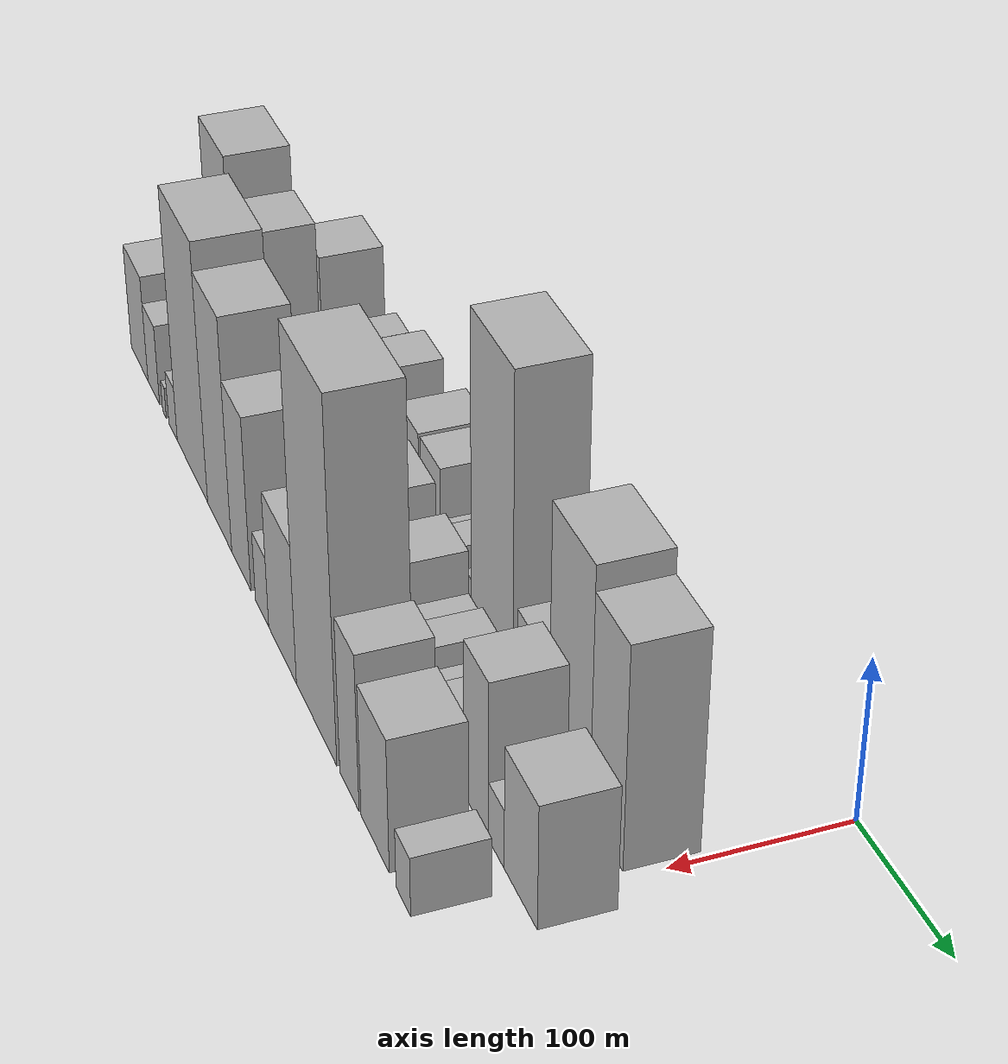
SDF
<sdf version="1.6">
 <world name="default">
  <model name="building_1">
   <static>1</static>
   <pose>100.0000 -534.6600 0 0.000000 0.000000 0.000000</pose>
   <link name="link">
    <pose>0 0 16.50 0 0 0</pose>
    <collision name="collision"><geometry><box><size>40.0000 18.6801 33.0000</size></box></geometry></collision>
    <visual name="visual">
     <cast_shadows>0</cast_shadows>
     <geometry><box><size>40.0000 18.6801 33.0000</size></box></geometry>
     <material>
      <script>
       <uri>model://HANNAS_wall/materials/scripts</uri>
       <uri>model://HANNAS_wall/materials/textures</uri>
       <name>vrc/HANNAS_wall</name>
      </script>
     </material>
    </visual>
   </link>
  </model>
  <model name="building_2">
   <static>1</static>
   <pose>100.0000 -504.8349 0 0.000000 0.000000 0.000000</pose>
   <link name="link">
    <pose>0 0 37.50 0 0 0</pose>
    <collision name="collision"><geometry><box><size>40.0000 40.9701 75.0000</size></box></geometry></collision>
    <visual name="visual">
     <cast_shadows>0</cast_shadows>
     <geometry><box><size>40.0000 40.9701 75.0000</size></box></geometry>
     <material>
      <script>
       <uri>model://HANNAS_wall/materials/scripts</uri>
       <uri>model://HANNAS_wall/materials/textures</uri>
       <name>vrc/HANNAS_wall</name>
      </script>
     </material>
    </visual>
   </link>
  </model>
  <model name="building_3">
   <static>1</static>
   <pose>100.0000 -468.0988 0 0.000000 0.000000 0.000000</pose>
   <link name="link">
    <pose>0 0 13.50 0 0 0</pose>
    <collision name="collision"><geometry><box><size>40.0000 12.5020 27.0000</size></box></geometry></collision>
    <visual name="visual">
     <cast_shadows>0</cast_shadows>
     <geometry><box><size>40.0000 12.5020 27.0000</size></box></geometry>
     <material>
      <script>
       <uri>model://HANNAS_wall/materials/scripts</uri>
       <uri>model://HANNAS_wall/materials/textures</uri>
       <name>vrc/HANNAS_wall</name>
      </script>
     </material>
    </visual>
   </link>
  </model>
  <model name="building_4">
   <static>1</static>
   <pose>100.0000 -449.6808 0 0.000000 0.000000 0.000000</pose>
   <link name="link">
    <pose>0 0 21.00 0 0 0</pose>
    <collision name="collision"><geometry><box><size>40.0000 24.3339 42.0000</size></box></geometry></collision>
    <visual name="visual">
     <cast_shadows>0</cast_shadows>
     <geometry><box><size>40.0000 24.3339 42.0000</size></box></geometry>
     <material>
      <script>
       <uri>model://HANNAS_wall/materials/scripts</uri>
       <uri>model://HANNAS_wall/materials/textures</uri>
       <name>vrc/HANNAS_wall</name>
      </script>
     </material>
    </visual>
   </link>
  </model>
  <model name="building_5">
   <static>1</static>
   <pose>100.0000 -418.4018 0 0.000000 0.000000 0.000000</pose>
   <link name="link">
    <pose>0 0 18.00 0 0 0</pose>
    <collision name="collision"><geometry><box><size>40.0000 18.2242 36.0000</size></box></geometry></collision>
    <visual name="visual">
     <cast_shadows>0</cast_shadows>
     <geometry><box><size>40.0000 18.2242 36.0000</size></box></geometry>
     <material>
      <script>
       <uri>model://HANNAS_wall/materials/scripts</uri>
       <uri>model://HANNAS_wall/materials/textures</uri>
       <name>vrc/HANNAS_wall</name>
      </script>
     </material>
    </visual>
   </link>
  </model>
  <model name="building_6">
   <static>1</static>
   <pose>100.0000 -392.4293 0 0.000000 0.000000 0.000000</pose>
   <link name="link">
    <pose>0 0 30.00 0 0 0</pose>
    <collision name="collision"><geometry><box><size>40.0000 33.7208 60.0000</size></box></geometry></collision>
    <visual name="visual">
     <cast_shadows>0</cast_shadows>
     <geometry><box><size>40.0000 33.7208 60.0000</size></box></geometry>
     <material>
      <script>
       <uri>model://HANNAS_wall/materials/scripts</uri>
       <uri>model://HANNAS_wall/materials/textures</uri>
       <name>vrc/HANNAS_wall</name>
      </script>
     </material>
    </visual>
   </link>
  </model>
  <model name="building_7">
   <static>1</static>
   <pose>100.0000 -365.3134 0 0.000000 0.000000 0.000000</pose>
   <link name="link">
    <pose>0 0 18.00 0 0 0</pose>
    <collision name="collision"><geometry><box><size>40.0000 20.5110 36.0000</size></box></geometry></collision>
    <visual name="visual">
     <cast_shadows>0</cast_shadows>
     <geometry><box><size>40.0000 20.5110 36.0000</size></box></geometry>
     <material>
      <script>
       <uri>model://HANNAS_wall/materials/scripts</uri>
       <uri>model://HANNAS_wall/materials/textures</uri>
       <name>vrc/HANNAS_wall</name>
      </script>
     </material>
    </visual>
   </link>
  </model>
  <model name="building_8">
   <static>1</static>
   <pose>100.0000 -346.2104 0 0.000000 0.000000 0.000000</pose>
   <link name="link">
    <pose>0 0 16.50 0 0 0</pose>
    <collision name="collision"><geometry><box><size>40.0000 17.6951 33.0000</size></box></geometry></collision>
    <visual name="visual">
     <cast_shadows>0</cast_shadows>
     <geometry><box><size>40.0000 17.6951 33.0000</size></box></geometry>
     <material>
      <script>
       <uri>model://HANNAS_wall/materials/scripts</uri>
       <uri>model://HANNAS_wall/materials/textures</uri>
       <name>vrc/HANNAS_wall</name>
      </script>
     </material>
    </visual>
   </link>
  </model>
  <model name="building_9">
   <static>1</static>
   <pose>100.0000 -320.1440 0 0.000000 0.000000 0.000000</pose>
   <link name="link">
    <pose>0 0 31.50 0 0 0</pose>
    <collision name="collision"><geometry><box><size>40.0000 34.4376 63.0000</size></box></geometry></collision>
    <visual name="visual">
     <cast_shadows>0</cast_shadows>
     <geometry><box><size>40.0000 34.4376 63.0000</size></box></geometry>
     <material>
      <script>
       <uri>model://HANNAS_wall/materials/scripts</uri>
       <uri>model://HANNAS_wall/materials/textures</uri>
       <name>vrc/HANNAS_wall</name>
      </script>
     </material>
    </visual>
   </link>
  </model>
  <model name="building_10">
   <static>1</static>
   <pose>100.0000 -283.2703 0 0.000000 0.000000 0.000000</pose>
   <link name="link">
    <pose>0 0 31.50 0 0 0</pose>
    <collision name="collision"><geometry><box><size>40.0000 33.3098 63.0000</size></box></geometry></collision>
    <visual name="visual">
     <cast_shadows>0</cast_shadows>
     <geometry><box><size>40.0000 33.3098 63.0000</size></box></geometry>
     <material>
      <script>
       <uri>model://HANNAS_wall/materials/scripts</uri>
       <uri>model://HANNAS_wall/materials/textures</uri>
       <name>vrc/HANNAS_wall</name>
      </script>
     </material>
    </visual>
   </link>
  </model>
  <model name="building_11">
   <static>1</static>
   <pose>100.0000 -258.0686 0 0.000000 0.000000 0.000000</pose>
   <link name="link">
    <pose>0 0 15.00 0 0 0</pose>
    <collision name="collision"><geometry><box><size>40.0000 17.0937 30.0000</size></box></geometry></collision>
    <visual name="visual">
     <cast_shadows>0</cast_shadows>
     <geometry><box><size>40.0000 17.0937 30.0000</size></box></geometry>
     <material>
      <script>
       <uri>model://HANNAS_wall/materials/scripts</uri>
       <uri>model://HANNAS_wall/materials/textures</uri>
       <name>vrc/HANNAS_wall</name>
      </script>
     </material>
    </visual>
   </link>
  </model>
  <model name="building_12">
   <static>1</static>
   <pose>100.0000 -238.4917 0 0.000000 0.000000 0.000000</pose>
   <link name="link">
    <pose>0 0 19.50 0 0 0</pose>
    <collision name="collision"><geometry><box><size>40.0000 22.0602 39.0000</size></box></geometry></collision>
    <visual name="visual">
     <cast_shadows>0</cast_shadows>
     <geometry><box><size>40.0000 22.0602 39.0000</size></box></geometry>
     <material>
      <script>
       <uri>model://HANNAS_wall/materials/scripts</uri>
       <uri>model://HANNAS_wall/materials/textures</uri>
       <name>vrc/HANNAS_wall</name>
      </script>
     </material>
    </visual>
   </link>
  </model>
  <model name="building_13">
   <static>1</static>
   <pose>100.0000 -222.4701 0 0.000000 0.000000 0.000000</pose>
   <link name="link">
    <pose>0 0 12.00 0 0 0</pose>
    <collision name="collision"><geometry><box><size>40.0000 9.9830 24.0000</size></box></geometry></collision>
    <visual name="visual">
     <cast_shadows>0</cast_shadows>
     <geometry><box><size>40.0000 9.9830 24.0000</size></box></geometry>
     <material>
      <script>
       <uri>model://HANNAS_wall/materials/scripts</uri>
       <uri>model://HANNAS_wall/materials/textures</uri>
       <name>vrc/HANNAS_wall</name>
      </script>
     </material>
    </visual>
   </link>
  </model>
  <model name="building_14">
   <static>1</static>
   <pose>100.0000 -185.9911 0 0.000000 0.000000 0.000000</pose>
   <link name="link">
    <pose>0 0 96.00 0 0 0</pose>
    <collision name="collision"><geometry><box><size>40.0000 62.9750 192.0000</size></box></geometry></collision>
    <visual name="visual">
     <cast_shadows>0</cast_shadows>
     <geometry><box><size>40.0000 62.9750 192.0000</size></box></geometry>
     <material>
      <script>
       <uri>model://HANNAS_wall/materials/scripts</uri>
       <uri>model://HANNAS_wall/materials/textures</uri>
       <name>vrc/HANNAS_wall</name>
      </script>
     </material>
    </visual>
   </link>
  </model>
  <model name="building_15">
   <static>1</static>
   <pose>100.0000 -134.8019 0 0.000000 0.000000 0.000000</pose>
   <link name="link">
    <pose>0 0 27.00 0 0 0</pose>
    <collision name="collision"><geometry><box><size>40.0000 27.4034 54.0000</size></box></geometry></collision>
    <visual name="visual">
     <cast_shadows>0</cast_shadows>
     <geometry><box><size>40.0000 27.4034 54.0000</size></box></geometry>
     <material>
      <script>
       <uri>model://HANNAS_wall/materials/scripts</uri>
       <uri>model://HANNAS_wall/materials/textures</uri>
       <name>vrc/HANNAS_wall</name>
      </script>
     </material>
    </visual>
   </link>
  </model>
  <model name="building_16">
   <static>1</static>
   <pose>100.0000 -112.0417 0 0.000000 0.000000 0.000000</pose>
   <link name="link">
    <pose>0 0 18.00 0 0 0</pose>
    <collision name="collision"><geometry><box><size>40.0000 18.1170 36.0000</size></box></geometry></collision>
    <visual name="visual">
     <cast_shadows>0</cast_shadows>
     <geometry><box><size>40.0000 18.1170 36.0000</size></box></geometry>
     <material>
      <script>
       <uri>model://HANNAS_wall/materials/scripts</uri>
       <uri>model://HANNAS_wall/materials/textures</uri>
       <name>vrc/HANNAS_wall</name>
      </script>
     </material>
    </visual>
   </link>
  </model>
  <model name="building_17">
   <static>1</static>
   <pose>100.0000 -75.4628 0 0.000000 0.000000 0.000000</pose>
   <link name="link">
    <pose>0 0 75.00 0 0 0</pose>
    <collision name="collision"><geometry><box><size>40.0000 55.0407 150.0000</size></box></geometry></collision>
    <visual name="visual">
     <cast_shadows>0</cast_shadows>
     <geometry><box><size>40.0000 55.0407 150.0000</size></box></geometry>
     <material>
      <script>
       <uri>model://HANNAS_wall/materials/scripts</uri>
       <uri>model://HANNAS_wall/materials/textures</uri>
       <name>vrc/HANNAS_wall</name>
      </script>
     </material>
    </visual>
   </link>
  </model>
  <model name="building_18">
   <static>1</static>
   <pose>100.0000 -26.7473 0 0.000000 0.000000 0.000000</pose>
   <link name="link">
    <pose>0 0 67.50 0 0 0</pose>
    <collision name="collision"><geometry><box><size>40.0000 42.3904 135.0000</size></box></geometry></collision>
    <visual name="visual">
     <cast_shadows>0</cast_shadows>
     <geometry><box><size>40.0000 42.3904 135.0000</size></box></geometry>
     <material>
      <script>
       <uri>model://HANNAS_wall/materials/scripts</uri>
       <uri>model://HANNAS_wall/materials/textures</uri>
       <name>vrc/HANNAS_wall</name>
      </script>
     </material>
    </visual>
   </link>
  </model>
  <model name="building_34">
   <static>1</static>
   <pose>152.0000 -520.9492 0 0.000000 0.000000 0.000000</pose>
   <link name="link">
    <pose>0 0 73.50 0 0 0</pose>
    <collision name="collision"><geometry><box><size>40.0000 54.1016 147.0000</size></box></geometry></collision>
    <visual name="visual">
     <cast_shadows>0</cast_shadows>
     <geometry><box><size>40.0000 54.1016 147.0000</size></box></geometry>
     <material>
      <script>
       <uri>model://HANNAS_wall/materials/scripts</uri>
       <uri>model://HANNAS_wall/materials/textures</uri>
       <name>vrc/HANNAS_wall</name>
      </script>
     </material>
    </visual>
   </link>
  </model>
  <model name="building_35">
   <static>1</static>
   <pose>152.0000 -468.5705 0 0.000000 0.000000 0.000000</pose>
   <link name="link">
    <pose>0 0 60.00 0 0 0</pose>
    <collision name="collision"><geometry><box><size>40.0000 42.6557 120.0000</size></box></geometry></collision>
    <visual name="visual">
     <cast_shadows>0</cast_shadows>
     <geometry><box><size>40.0000 42.6557 120.0000</size></box></geometry>
     <material>
      <script>
       <uri>model://HANNAS_wall/materials/scripts</uri>
       <uri>model://HANNAS_wall/materials/textures</uri>
       <name>vrc/HANNAS_wall</name>
      </script>
     </material>
    </visual>
   </link>
  </model>
  <model name="building_36">
   <static>1</static>
   <pose>152.0000 -425.7523 0 0.000000 0.000000 0.000000</pose>
   <link name="link">
    <pose>0 0 31.50 0 0 0</pose>
    <collision name="collision"><geometry><box><size>40.0000 34.9807 63.0000</size></box></geometry></collision>
    <visual name="visual">
     <cast_shadows>0</cast_shadows>
     <geometry><box><size>40.0000 34.9807 63.0000</size></box></geometry>
     <material>
      <script>
       <uri>model://HANNAS_wall/materials/scripts</uri>
       <uri>model://HANNAS_wall/materials/textures</uri>
       <name>vrc/HANNAS_wall</name>
      </script>
     </material>
    </visual>
   </link>
  </model>
  <model name="building_37">
   <static>1</static>
   <pose>152.0000 -399.0803 0 0.000000 0.000000 0.000000</pose>
   <link name="link">
    <pose>0 0 16.50 0 0 0</pose>
    <collision name="collision"><geometry><box><size>40.0000 18.3633 33.0000</size></box></geometry></collision>
    <visual name="visual">
     <cast_shadows>0</cast_shadows>
     <geometry><box><size>40.0000 18.3633 33.0000</size></box></geometry>
     <material>
      <script>
       <uri>model://HANNAS_wall/materials/scripts</uri>
       <uri>model://HANNAS_wall/materials/textures</uri>
       <name>vrc/HANNAS_wall</name>
      </script>
     </material>
    </visual>
   </link>
  </model>
  <model name="building_38">
   <static>1</static>
   <pose>152.0000 -382.2008 0 0.000000 0.000000 0.000000</pose>
   <link name="link">
    <pose>0 0 15.00 0 0 0</pose>
    <collision name="collision"><geometry><box><size>40.0000 15.3959 30.0000</size></box></geometry></collision>
    <visual name="visual">
     <cast_shadows>0</cast_shadows>
     <geometry><box><size>40.0000 15.3959 30.0000</size></box></geometry>
     <material>
      <script>
       <uri>model://HANNAS_wall/materials/scripts</uri>
       <uri>model://HANNAS_wall/materials/textures</uri>
       <name>vrc/HANNAS_wall</name>
      </script>
     </material>
    </visual>
   </link>
  </model>
  <model name="building_39">
   <static>1</static>
   <pose>152.0000 -365.5095 0 0.000000 0.000000 0.000000</pose>
   <link name="link">
    <pose>0 0 16.50 0 0 0</pose>
    <collision name="collision"><geometry><box><size>40.0000 17.9867 33.0000</size></box></geometry></collision>
    <visual name="visual">
     <cast_shadows>0</cast_shadows>
     <geometry><box><size>40.0000 17.9867 33.0000</size></box></geometry>
     <material>
      <script>
       <uri>model://HANNAS_wall/materials/scripts</uri>
       <uri>model://HANNAS_wall/materials/textures</uri>
       <name>vrc/HANNAS_wall</name>
      </script>
     </material>
    </visual>
   </link>
  </model>
  <model name="building_40">
   <static>1</static>
   <pose>152.0000 -350.2449 0 0.000000 0.000000 0.000000</pose>
   <link name="link">
    <pose>0 0 13.50 0 0 0</pose>
    <collision name="collision"><geometry><box><size>40.0000 12.5424 27.0000</size></box></geometry></collision>
    <visual name="visual">
     <cast_shadows>0</cast_shadows>
     <geometry><box><size>40.0000 12.5424 27.0000</size></box></geometry>
     <material>
      <script>
       <uri>model://HANNAS_wall/materials/scripts</uri>
       <uri>model://HANNAS_wall/materials/textures</uri>
       <name>vrc/HANNAS_wall</name>
      </script>
     </material>
    </visual>
   </link>
  </model>
  <model name="building_41">
   <static>1</static>
   <pose>152.0000 -333.3056 0 0.000000 0.000000 0.000000</pose>
   <link name="link">
    <pose>0 0 19.50 0 0 0</pose>
    <collision name="collision"><geometry><box><size>40.0000 21.3363 39.0000</size></box></geometry></collision>
    <visual name="visual">
     <cast_shadows>0</cast_shadows>
     <geometry><box><size>40.0000 21.3363 39.0000</size></box></geometry>
     <material>
      <script>
       <uri>model://HANNAS_wall/materials/scripts</uri>
       <uri>model://HANNAS_wall/materials/textures</uri>
       <name>vrc/HANNAS_wall</name>
      </script>
     </material>
    </visual>
   </link>
  </model>
  <model name="building_42">
   <static>1</static>
   <pose>152.0000 -317.7434 0 0.000000 0.000000 0.000000</pose>
   <link name="link">
    <pose>0 0 10.50 0 0 0</pose>
    <collision name="collision"><geometry><box><size>40.0000 9.7881 21.0000</size></box></geometry></collision>
    <visual name="visual">
     <cast_shadows>0</cast_shadows>
     <geometry><box><size>40.0000 9.7881 21.0000</size></box></geometry>
     <material>
      <script>
       <uri>model://HANNAS_wall/materials/scripts</uri>
       <uri>model://HANNAS_wall/materials/textures</uri>
       <name>vrc/HANNAS_wall</name>
      </script>
     </material>
    </visual>
   </link>
  </model>
  <model name="building_43">
   <static>1</static>
   <pose>152.0000 -297.5751 0 0.000000 0.000000 0.000000</pose>
   <link name="link">
    <pose>0 0 30.00 0 0 0</pose>
    <collision name="collision"><geometry><box><size>40.0000 30.5484 60.0000</size></box></geometry></collision>
    <visual name="visual">
     <cast_shadows>0</cast_shadows>
     <geometry><box><size>40.0000 30.5484 60.0000</size></box></geometry>
     <material>
      <script>
       <uri>model://HANNAS_wall/materials/scripts</uri>
       <uri>model://HANNAS_wall/materials/textures</uri>
       <name>vrc/HANNAS_wall</name>
      </script>
     </material>
    </visual>
   </link>
  </model>
  <model name="building_44">
   <static>1</static>
   <pose>152.0000 -260.7096 0 0.000000 0.000000 0.000000</pose>
   <link name="link">
    <pose>0 0 37.50 0 0 0</pose>
    <collision name="collision"><geometry><box><size>40.0000 43.1825 75.0000</size></box></geometry></collision>
    <visual name="visual">
     <cast_shadows>0</cast_shadows>
     <geometry><box><size>40.0000 43.1825 75.0000</size></box></geometry>
     <material>
      <script>
       <uri>model://HANNAS_wall/materials/scripts</uri>
       <uri>model://HANNAS_wall/materials/textures</uri>
       <name>vrc/HANNAS_wall</name>
      </script>
     </material>
    </visual>
   </link>
  </model>
  <model name="building_45">
   <static>1</static>
   <pose>152.0000 -231.1331 0 0.000000 0.000000 0.000000</pose>
   <link name="link">
    <pose>0 0 15.00 0 0 0</pose>
    <collision name="collision"><geometry><box><size>40.0000 15.9706 30.0000</size></box></geometry></collision>
    <visual name="visual">
     <cast_shadows>0</cast_shadows>
     <geometry><box><size>40.0000 15.9706 30.0000</size></box></geometry>
     <material>
      <script>
       <uri>model://HANNAS_wall/materials/scripts</uri>
       <uri>model://HANNAS_wall/materials/textures</uri>
       <name>vrc/HANNAS_wall</name>
      </script>
     </material>
    </visual>
   </link>
  </model>
  <model name="building_46">
   <static>1</static>
   <pose>152.0000 -205.4226 0 0.000000 0.000000 0.000000</pose>
   <link name="link">
    <pose>0 0 33.00 0 0 0</pose>
    <collision name="collision"><geometry><box><size>40.0000 35.4503 66.0000</size></box></geometry></collision>
    <visual name="visual">
     <cast_shadows>0</cast_shadows>
     <geometry><box><size>40.0000 35.4503 66.0000</size></box></geometry>
     <material>
      <script>
       <uri>model://HANNAS_wall/materials/scripts</uri>
       <uri>model://HANNAS_wall/materials/textures</uri>
       <name>vrc/HANNAS_wall</name>
      </script>
     </material>
    </visual>
   </link>
  </model>
  <model name="building_47">
   <static>1</static>
   <pose>152.0000 -177.1141 0 0.000000 0.000000 0.000000</pose>
   <link name="link">
    <pose>0 0 19.50 0 0 0</pose>
    <collision name="collision"><geometry><box><size>40.0000 21.1668 39.0000</size></box></geometry></collision>
    <visual name="visual">
     <cast_shadows>0</cast_shadows>
     <geometry><box><size>40.0000 21.1668 39.0000</size></box></geometry>
     <material>
      <script>
       <uri>model://HANNAS_wall/materials/scripts</uri>
       <uri>model://HANNAS_wall/materials/textures</uri>
       <name>vrc/HANNAS_wall</name>
      </script>
     </material>
    </visual>
   </link>
  </model>
  <model name="building_48">
   <static>1</static>
   <pose>152.0000 -154.8948 0 0.000000 0.000000 0.000000</pose>
   <link name="link">
    <pose>0 0 22.50 0 0 0</pose>
    <collision name="collision"><geometry><box><size>40.0000 23.2718 45.0000</size></box></geometry></collision>
    <visual name="visual">
     <cast_shadows>0</cast_shadows>
     <geometry><box><size>40.0000 23.2718 45.0000</size></box></geometry>
     <material>
      <script>
       <uri>model://HANNAS_wall/materials/scripts</uri>
       <uri>model://HANNAS_wall/materials/textures</uri>
       <name>vrc/HANNAS_wall</name>
      </script>
     </material>
    </visual>
   </link>
  </model>
  <model name="building_49">
   <static>1</static>
   <pose>152.0000 -127.4523 0 0.000000 0.000000 0.000000</pose>
   <link name="link">
    <pose>0 0 18.00 0 0 0</pose>
    <collision name="collision"><geometry><box><size>40.0000 19.6132 36.0000</size></box></geometry></collision>
    <visual name="visual">
     <cast_shadows>0</cast_shadows>
     <geometry><box><size>40.0000 19.6132 36.0000</size></box></geometry>
     <material>
      <script>
       <uri>model://HANNAS_wall/materials/scripts</uri>
       <uri>model://HANNAS_wall/materials/textures</uri>
       <name>vrc/HANNAS_wall</name>
      </script>
     </material>
    </visual>
   </link>
  </model>
  <model name="building_50">
   <static>1</static>
   <pose>152.0000 -96.2474 0 0.000000 0.000000 0.000000</pose>
   <link name="link">
    <pose>0 0 25.50 0 0 0</pose>
    <collision name="collision"><geometry><box><size>40.0000 26.7966 51.0000</size></box></geometry></collision>
    <visual name="visual">
     <cast_shadows>0</cast_shadows>
     <geometry><box><size>40.0000 26.7966 51.0000</size></box></geometry>
     <material>
      <script>
       <uri>model://HANNAS_wall/materials/scripts</uri>
       <uri>model://HANNAS_wall/materials/textures</uri>
       <name>vrc/HANNAS_wall</name>
      </script>
     </material>
    </visual>
   </link>
  </model>
  <model name="building_51">
   <static>1</static>
   <pose>152.0000 -65.3456 0 0.000000 0.000000 0.000000</pose>
   <link name="link">
    <pose>0 0 48.00 0 0 0</pose>
    <collision name="collision"><geometry><box><size>40.0000 35.0070 96.0000</size></box></geometry></collision>
    <visual name="visual">
     <cast_shadows>0</cast_shadows>
     <geometry><box><size>40.0000 35.0070 96.0000</size></box></geometry>
     <material>
      <script>
       <uri>model://HANNAS_wall/materials/scripts</uri>
       <uri>model://HANNAS_wall/materials/textures</uri>
       <name>vrc/HANNAS_wall</name>
      </script>
     </material>
    </visual>
   </link>
  </model>
  <model name="building_52">
   <static>1</static>
   <pose>152.0000 -37.1911 0 0.000000 0.000000 0.000000</pose>
   <link name="link">
    <pose>0 0 18.00 0 0 0</pose>
    <collision name="collision"><geometry><box><size>40.0000 21.3020 36.0000</size></box></geometry></collision>
    <visual name="visual">
     <cast_shadows>0</cast_shadows>
     <geometry><box><size>40.0000 21.3020 36.0000</size></box></geometry>
     <material>
      <script>
       <uri>model://HANNAS_wall/materials/scripts</uri>
       <uri>model://HANNAS_wall/materials/textures</uri>
       <name>vrc/HANNAS_wall</name>
      </script>
     </material>
    </visual>
   </link>
  </model>
  <model name="building_53">
   <static>1</static>
   <pose>152.0000 -4.4842 0 0.000000 0.000000 0.000000</pose>
   <link name="link">
    <pose>0 0 37.50 0 0 0</pose>
    <collision name="collision"><geometry><box><size>40.0000 44.1118 75.0000</size></box></geometry></collision>
    <visual name="visual">
     <cast_shadows>0</cast_shadows>
     <geometry><box><size>40.0000 44.1118 75.0000</size></box></geometry>
     <material>
      <script>
       <uri>model://HANNAS_wall/materials/scripts</uri>
       <uri>model://HANNAS_wall/materials/textures</uri>
       <name>vrc/HANNAS_wall</name>
      </script>
     </material>
    </visual>
   </link>
  </model>
  <model name="building_72">
   <static>1</static>
   <pose>204.0000 -524.3375 0 0.000000 0.000000 0.000000</pose>
   <link name="link">
    <pose>0 0 36.00 0 0 0</pose>
    <collision name="collision"><geometry><box><size>40.0000 41.3250 72.0000</size></box></geometry></collision>
    <visual name="visual">
     <cast_shadows>0</cast_shadows>
     <geometry><box><size>40.0000 41.3250 72.0000</size></box></geometry>
     <material>
      <script>
       <uri>model://HANNAS_wall/materials/scripts</uri>
       <uri>model://HANNAS_wall/materials/textures</uri>
       <name>vrc/HANNAS_wall</name>
      </script>
     </material>
    </visual>
   </link>
  </model>
  <model name="building_73">
   <static>1</static>
   <pose>204.0000 -489.7981 0 0.000000 0.000000 0.000000</pose>
   <link name="link">
    <pose>0 0 27.00 0 0 0</pose>
    <collision name="collision"><geometry><box><size>40.0000 27.7538 54.0000</size></box></geometry></collision>
    <visual name="visual">
     <cast_shadows>0</cast_shadows>
     <geometry><box><size>40.0000 27.7538 54.0000</size></box></geometry>
     <material>
      <script>
       <uri>model://HANNAS_wall/materials/scripts</uri>
       <uri>model://HANNAS_wall/materials/textures</uri>
       <name>vrc/HANNAS_wall</name>
      </script>
     </material>
    </visual>
   </link>
  </model>
  <model name="building_74">
   <static>1</static>
   <pose>204.0000 -464.5645 0 0.000000 0.000000 0.000000</pose>
   <link name="link">
    <pose>0 0 10.50 0 0 0</pose>
    <collision name="collision"><geometry><box><size>40.0000 8.7135 21.0000</size></box></geometry></collision>
    <visual name="visual">
     <cast_shadows>0</cast_shadows>
     <geometry><box><size>40.0000 8.7135 21.0000</size></box></geometry>
     <material>
      <script>
       <uri>model://HANNAS_wall/materials/scripts</uri>
       <uri>model://HANNAS_wall/materials/textures</uri>
       <name>vrc/HANNAS_wall</name>
      </script>
     </material>
    </visual>
   </link>
  </model>
  <model name="building_75">
   <static>1</static>
   <pose>204.0000 -444.4798 0 0.000000 0.000000 0.000000</pose>
   <link name="link">
    <pose>0 0 18.00 0 0 0</pose>
    <collision name="collision"><geometry><box><size>40.0000 19.4557 36.0000</size></box></geometry></collision>
    <visual name="visual">
     <cast_shadows>0</cast_shadows>
     <geometry><box><size>40.0000 19.4557 36.0000</size></box></geometry>
     <material>
      <script>
       <uri>model://HANNAS_wall/materials/scripts</uri>
       <uri>model://HANNAS_wall/materials/textures</uri>
       <name>vrc/HANNAS_wall</name>
      </script>
     </material>
    </visual>
   </link>
  </model>
  <model name="building_76">
   <static>1</static>
   <pose>204.0000 -401.2330 0 0.000000 0.000000 0.000000</pose>
   <link name="link">
    <pose>0 0 84.00 0 0 0</pose>
    <collision name="collision"><geometry><box><size>40.0000 67.0380 168.0000</size></box></geometry></collision>
    <visual name="visual">
     <cast_shadows>0</cast_shadows>
     <geometry><box><size>40.0000 67.0380 168.0000</size></box></geometry>
     <material>
      <script>
       <uri>model://HANNAS_wall/materials/scripts</uri>
       <uri>model://HANNAS_wall/materials/textures</uri>
       <name>vrc/HANNAS_wall</name>
      </script>
     </material>
    </visual>
   </link>
  </model>
  <model name="building_77">
   <static>1</static>
   <pose>204.0000 -342.5527 0 0.000000 0.000000 0.000000</pose>
   <link name="link">
    <pose>0 0 75.00 0 0 0</pose>
    <collision name="collision"><geometry><box><size>40.0000 50.3224 150.0000</size></box></geometry></collision>
    <visual name="visual">
     <cast_shadows>0</cast_shadows>
     <geometry><box><size>40.0000 50.3224 150.0000</size></box></geometry>
     <material>
      <script>
       <uri>model://HANNAS_wall/materials/scripts</uri>
       <uri>model://HANNAS_wall/materials/textures</uri>
       <name>vrc/HANNAS_wall</name>
      </script>
     </material>
    </visual>
   </link>
  </model>
  <model name="building_78">
   <static>1</static>
   <pose>204.0000 -298.3689 0 0.000000 0.000000 0.000000</pose>
   <link name="link">
    <pose>0 0 55.50 0 0 0</pose>
    <collision name="collision"><geometry><box><size>40.0000 38.0453 111.0000</size></box></geometry></collision>
    <visual name="visual">
     <cast_shadows>0</cast_shadows>
     <geometry><box><size>40.0000 38.0453 111.0000</size></box></geometry>
     <material>
      <script>
       <uri>model://HANNAS_wall/materials/scripts</uri>
       <uri>model://HANNAS_wall/materials/textures</uri>
       <name>vrc/HANNAS_wall</name>
      </script>
     </material>
    </visual>
   </link>
  </model>
  <model name="building_79">
   <static>1</static>
   <pose>204.0000 -257.7093 0 0.000000 0.000000 0.000000</pose>
   <link name="link">
    <pose>0 0 22.50 0 0 0</pose>
    <collision name="collision"><geometry><box><size>40.0000 25.2739 45.0000</size></box></geometry></collision>
    <visual name="visual">
     <cast_shadows>0</cast_shadows>
     <geometry><box><size>40.0000 25.2739 45.0000</size></box></geometry>
     <material>
      <script>
       <uri>model://HANNAS_wall/materials/scripts</uri>
       <uri>model://HANNAS_wall/materials/textures</uri>
       <name>vrc/HANNAS_wall</name>
      </script>
     </material>
    </visual>
   </link>
  </model>
  <model name="building_80">
   <static>1</static>
   <pose>204.0000 -219.6411 0 0.000000 0.000000 0.000000</pose>
   <link name="link">
    <pose>0 0 43.50 0 0 0</pose>
    <collision name="collision"><geometry><box><size>40.0000 50.8625 87.0000</size></box></geometry></collision>
    <visual name="visual">
     <cast_shadows>0</cast_shadows>
     <geometry><box><size>40.0000 50.8625 87.0000</size></box></geometry>
     <material>
      <script>
       <uri>model://HANNAS_wall/materials/scripts</uri>
       <uri>model://HANNAS_wall/materials/textures</uri>
       <name>vrc/HANNAS_wall</name>
      </script>
     </material>
    </visual>
   </link>
  </model>
  <model name="building_81">
   <static>1</static>
   <pose>204.0000 -159.5301 0 0.000000 0.000000 0.000000</pose>
   <link name="link">
    <pose>0 0 109.50 0 0 0</pose>
    <collision name="collision"><geometry><box><size>40.0000 69.3596 219.0000</size></box></geometry></collision>
    <visual name="visual">
     <cast_shadows>0</cast_shadows>
     <geometry><box><size>40.0000 69.3596 219.0000</size></box></geometry>
     <material>
      <script>
       <uri>model://HANNAS_wall/materials/scripts</uri>
       <uri>model://HANNAS_wall/materials/textures</uri>
       <name>vrc/HANNAS_wall</name>
      </script>
     </material>
    </visual>
   </link>
  </model>
  <model name="building_82">
   <static>1</static>
   <pose>204.0000 -104.3004 0 0.000000 0.000000 0.000000</pose>
   <link name="link">
    <pose>0 0 48.00 0 0 0</pose>
    <collision name="collision"><geometry><box><size>40.0000 31.0997 96.0000</size></box></geometry></collision>
    <visual name="visual">
     <cast_shadows>0</cast_shadows>
     <geometry><box><size>40.0000 31.0997 96.0000</size></box></geometry>
     <material>
      <script>
       <uri>model://HANNAS_wall/materials/scripts</uri>
       <uri>model://HANNAS_wall/materials/textures</uri>
       <name>vrc/HANNAS_wall</name>
      </script>
     </material>
    </visual>
   </link>
  </model>
  <model name="building_83">
   <static>1</static>
   <pose>204.0000 -64.0087 0 0.000000 0.000000 0.000000</pose>
   <link name="link">
    <pose>0 0 40.50 0 0 0</pose>
    <collision name="collision"><geometry><box><size>40.0000 43.4837 81.0000</size></box></geometry></collision>
    <visual name="visual">
     <cast_shadows>0</cast_shadows>
     <geometry><box><size>40.0000 43.4837 81.0000</size></box></geometry>
     <material>
      <script>
       <uri>model://HANNAS_wall/materials/scripts</uri>
       <uri>model://HANNAS_wall/materials/textures</uri>
       <name>vrc/HANNAS_wall</name>
      </script>
     </material>
    </visual>
   </link>
  </model>
  <model name="building_84">
   <static>1</static>
   <pose>204.0000 -21.4990 0 0.000000 0.000000 0.000000</pose>
   <link name="link">
    <pose>0 0 18.00 0 0 0</pose>
    <collision name="collision"><geometry><box><size>40.0000 21.5357 36.0000</size></box></geometry></collision>
    <visual name="visual">
     <cast_shadows>0</cast_shadows>
     <geometry><box><size>40.0000 21.5357 36.0000</size></box></geometry>
     <material>
      <script>
       <uri>model://HANNAS_wall/materials/scripts</uri>
       <uri>model://HANNAS_wall/materials/textures</uri>
       <name>vrc/HANNAS_wall</name>
      </script>
     </material>
    </visual>
   </link>
  </model>
 </world>
</sdf>
